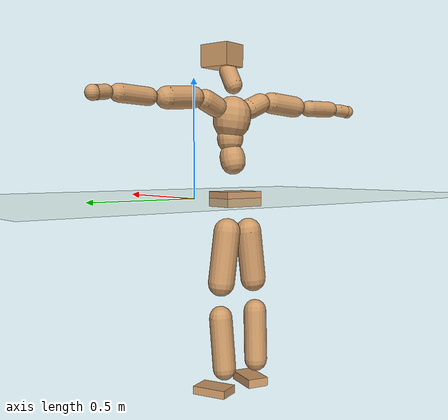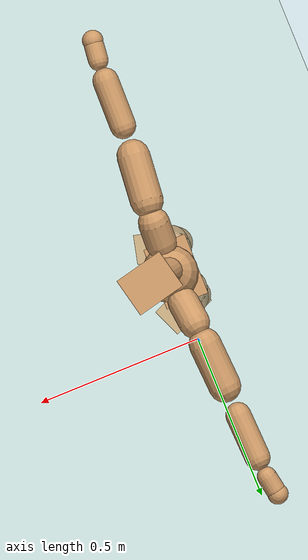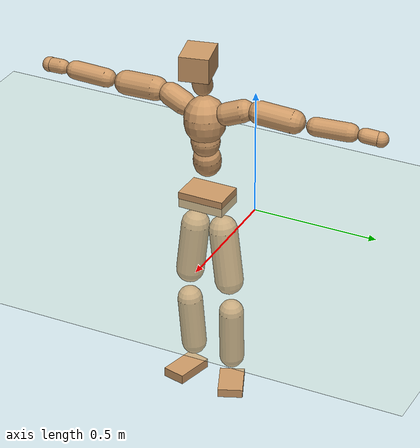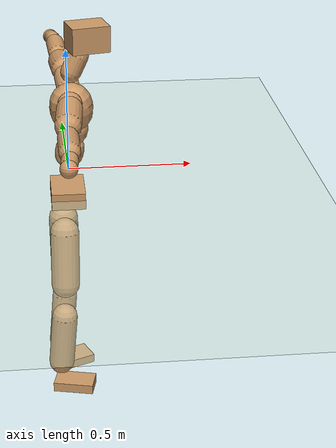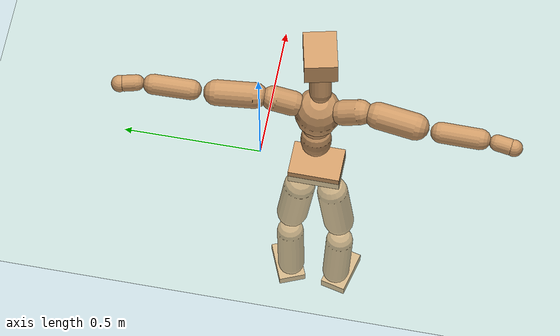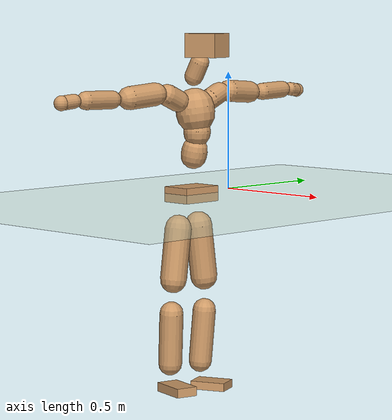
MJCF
<mujoco model="humanoid">
  <compiler coordinate="local" angle="radian"/>
  <default>
    <joint damping="0.0" armature="0.01" stiffness="0.0" limited="true"/>
    <geom conaffinity="1" condim="3" contype="7" margin="0.001" rgba="0.8 0.6 .4 1"/>
  </default>
  <asset>
    <texture type="skybox" builtin="gradient" rgb1=".4 .5 .6" rgb2="0 0 0" width="100" height="100"/>
    <texture builtin="flat" height="1278" mark="cross" markrgb="1 1 1" name="texgeom" random="0.01" rgb1="0.8 0.6 0.4" rgb2="0.8 0.6 0.4" type="cube" width="127"/>
    <texture builtin="checker" height="100" name="texplane" rgb1="0 0 0" rgb2="0.8 0.8 0.8" type="2d" width="100"/>
    <material name="MatPlane" reflectance="0.5" shininess="1" specular="1" texrepeat="60 60" texture="texplane"/>
    <material name="geom" texture="texgeom" texuniform="true"/>
  </asset>
  <worldbody>
    <light cutoff="100" diffuse="1 1 1" dir="-0 0 -1.3" directional="true" exponent="1" pos="0 0 1.3" specular=".1 .1 .1"/>
    <geom conaffinity="1" condim="3" name="floor" pos="0 0 0" rgba="0.8 0.9 0.8 1" size="100 100 .2" type="plane" material="MatPlane"/>
    <body name="Pelvis" pos="-0.0014 -0.209 0.0023">
      <freejoint name="Pelvis"/>
      <geom type="box" contype="1" conaffinity="1" density="500" pos="-0.0129 0.0001 -0.0084" size="0.0651 0.0933 0.0323" quat="1.0000 0.0000 0.0000 -0.0042" name="Pelvis"/>
      <body name="L_Hip" pos="-0.0313 0.0501 -0.0729">
        <joint name="L_Hip_x" type="hinge" pos="0 0 0" axis="1 0 0" stiffness="800" damping="80" armature="0.02" range="-180.0000 180.0000"/>
        <joint name="L_Hip_y" type="hinge" pos="0 0 0" axis="0 1 0" stiffness="800" damping="80" armature="0.02" range="-180.0000 180.0000"/>
        <joint name="L_Hip_z" type="hinge" pos="0 0 0" axis="0 0 1" stiffness="800" damping="80" armature="0.02" range="-180.0000 180.0000"/>
        <geom type="capsule" contype="1" conaffinity="1" density="500" fromto="0.0013 0.0095 -0.0743 0.0053 0.0379 -0.2971" size="0.0573" name="L_Hip"/>
        <body name="L_Knee" pos="0.0067 0.0474 -0.3714">
          <joint name="L_Knee_x" type="hinge" pos="0 0 0" axis="1 0 0" stiffness="800" damping="80" armature="0.02" range="-180.0000 180.0000"/>
          <joint name="L_Knee_y" type="hinge" pos="0 0 0" axis="0 1 0" stiffness="800" damping="80" armature="0.02" range="-180.0000 180.0000"/>
          <joint name="L_Knee_z" type="hinge" pos="0 0 0" axis="0 0 1" stiffness="800" damping="80" armature="0.02" range="-180.0000 180.0000"/>
          <geom type="capsule" contype="1" conaffinity="1" density="500" fromto="-0.0061 -0.0019 -0.0740 -0.0245 -0.0076 -0.2958" size="0.0496" name="L_Knee"/>
          <body name="L_Ankle" pos="-0.0306 -0.0095 -0.3698">
            <joint name="L_Ankle_x" type="hinge" pos="0 0 0" axis="1 0 0" stiffness="800" damping="80" armature="0.02" range="-180.0000 180.0000"/>
            <joint name="L_Ankle_y" type="hinge" pos="0 0 0" axis="0 1 0" stiffness="800" damping="80" armature="0.02" range="-180.0000 180.0000"/>
            <joint name="L_Ankle_z" type="hinge" pos="0 0 0" axis="0 0 1" stiffness="800" damping="80" armature="0.02" range="-180.0000 180.0000"/>
            <geom type="box" contype="1" conaffinity="1" density="500" pos="0.0534 0.0221 -0.0270" size="0.0763 0.0497 0.0175" quat="0.9808 0.0000 0.0000 0.1953" name="L_Ankle"/>
            <body name="L_Toe" pos="0.1068 0.0443 -0.054">
              <joint name="L_Toe_x" type="hinge" pos="0 0 0" axis="1 0 0" stiffness="500" damping="50" armature="0.02" range="-180.0000 180.0000"/>
              <joint name="L_Toe_y" type="hinge" pos="0 0 0" axis="0 1 0" stiffness="500" damping="50" armature="0.02" range="-180.0000 180.0000"/>
              <joint name="L_Toe_z" type="hinge" pos="0 0 0" axis="0 0 1" stiffness="500" damping="50" armature="0.02" range="-180.0000 180.0000"/>
              <geom type="box" contype="1" conaffinity="1" density="500" pos="0.0000 0.0000 0.0286" size="0.001 0.0024 0.001" quat="0.9798 0.0000 0.0000 0.1997" name="L_Toe"/>
            </body>
          </body>
        </body>
      </body>
      <body name="R_Hip" pos="-0.03 -0.0528 -0.0785">
        <joint name="R_Hip_x" type="hinge" pos="0 0 0" axis="1 0 0" stiffness="800" damping="80" armature="0.02" range="-180.0000 180.0000"/>
        <joint name="R_Hip_y" type="hinge" pos="0 0 0" axis="0 1 0" stiffness="800" damping="80" armature="0.02" range="-180.0000 180.0000"/>
        <joint name="R_Hip_z" type="hinge" pos="0 0 0" axis="0 0 1" stiffness="800" damping="80" armature="0.02" range="-180.0000 180.0000"/>
        <geom type="capsule" contype="1" conaffinity="1" density="500" fromto="-0.0009 -0.0087 -0.0722 -0.0036 -0.0347 -0.2886" size="0.056" name="R_Hip"/>
        <body name="R_Knee" pos="-0.0045 -0.0434 -0.3608">
          <joint name="R_Knee_x" type="hinge" pos="0 0 0" axis="1 0 0" stiffness="800" damping="80" armature="0.02" range="-180.0000 180.0000"/>
          <joint name="R_Knee_y" type="hinge" pos="0 0 0" axis="0 1 0" stiffness="800" damping="80" armature="0.02" range="-180.0000 180.0000"/>
          <joint name="R_Knee_z" type="hinge" pos="0 0 0" axis="0 0 1" stiffness="800" damping="80" armature="0.02" range="-180.0000 180.0000"/>
          <geom type="capsule" contype="1" conaffinity="1" density="500" fromto="-0.0057 0.0031 -0.0725 -0.0228 0.0123 -0.2901" size="0.0503" name="R_Knee"/>
          <body name="R_Ankle" pos="-0.0285 0.0154 -0.3627">
            <joint name="R_Ankle_x" type="hinge" pos="0 0 0" axis="1 0 0" stiffness="800" damping="80" armature="0.02" range="-180.0000 180.0000"/>
            <joint name="R_Ankle_y" type="hinge" pos="0 0 0" axis="0 1 0" stiffness="800" damping="80" armature="0.02" range="-180.0000 180.0000"/>
            <joint name="R_Ankle_z" type="hinge" pos="0 0 0" axis="0 0 1" stiffness="800" damping="80" armature="0.02" range="-180.0000 180.0000"/>
            <geom type="box" contype="1" conaffinity="1" density="500" pos="0.0575 -0.0139 -0.0284" size="0.0802 0.0469 0.0192" quat="0.9930 0.0000 0.0000 -0.1185" name="R_Ankle"/>
            <body name="R_Toe" pos="0.1149 -0.0278 -0.0568">
              <joint name="R_Toe_x" type="hinge" pos="0 0 0" axis="1 0 0" stiffness="500" damping="50" armature="0.02" range="-180.0000 180.0000"/>
              <joint name="R_Toe_y" type="hinge" pos="0 0 0" axis="0 1 0" stiffness="500" damping="50" armature="0.02" range="-180.0000 180.0000"/>
              <joint name="R_Toe_z" type="hinge" pos="0 0 0" axis="0 0 1" stiffness="500" damping="50" armature="0.02" range="-180.0000 180.0000"/>
              <geom type="box" contype="1" conaffinity="1" density="500" pos="0.0000 0.0000 0.0313" size="0.0009 0.0023 0.0011" quat="0.9941 0.0000 0.0000 -0.1085" name="R_Toe"/>
            </body>
          </body>
        </body>
      </body>
      <body name="Torso" pos="-0.0162 0.0033 0.1009">
        <joint name="Torso_x" type="hinge" pos="0 0 0" axis="1 0 0" stiffness="1000" damping="100" armature="0.02" range="-180.0000 180.0000"/>
        <joint name="Torso_y" type="hinge" pos="0 0 0" axis="0 1 0" stiffness="1000" damping="100" armature="0.02" range="-180.0000 180.0000"/>
        <joint name="Torso_z" type="hinge" pos="0 0 0" axis="0 0 1" stiffness="1000" damping="100" armature="0.02" range="-180.0000 180.0000"/>
        <geom type="capsule" contype="1" conaffinity="1" density="500" fromto="0.0177 0.0018 0.0763 0.0118 0.0012 0.0509" size="0.0545" name="Torso"/>
        <body name="Spine" pos="0.0296 0.003 0.1272">
          <joint name="Spine_x" type="hinge" pos="0 0 0" axis="1 0 0" stiffness="1000" damping="100" armature="0.02" range="-180.0000 180.0000"/>
          <joint name="Spine_y" type="hinge" pos="0 0 0" axis="0 1 0" stiffness="1000" damping="100" armature="0.02" range="-180.0000 180.0000"/>
          <joint name="Spine_z" type="hinge" pos="0 0 0" axis="0 0 1" stiffness="1000" damping="100" armature="0.02" range="-180.0000 180.0000"/>
          <geom type="capsule" contype="1" conaffinity="1" density="500" fromto="0.0009 -0.0006 0.0308 0.0006 -0.0004 0.0205" size="0.0567" name="Spine"/>
          <body name="Chest" pos="0.0015 -0.001 0.0514">
            <joint name="Chest_x" type="hinge" pos="0 0 0" axis="1 0 0" stiffness="1000" damping="100" armature="0.02" range="-180.0000 180.0000"/>
            <joint name="Chest_y" type="hinge" pos="0 0 0" axis="0 1 0" stiffness="1000" damping="100" armature="0.02" range="-180.0000 180.0000"/>
            <joint name="Chest_z" type="hinge" pos="0 0 0" axis="0 0 1" stiffness="1000" damping="100" armature="0.02" range="-180.0000 180.0000"/>
            <geom type="capsule" contype="1" conaffinity="1" density="500" fromto="-0.0080 -0.0056 0.0755 -0.0053 -0.0037 0.0503" size="0.0817" name="Chest"/>
            <body name="Neck" pos="-0.0154 -0.015 0.1857">
              <joint name="Neck_x" type="hinge" pos="0 0 0" axis="1 0 0" stiffness="500" damping="50" armature="0.02" range="-180.0000 180.0000"/>
              <joint name="Neck_y" type="hinge" pos="0 0 0" axis="0 1 0" stiffness="500" damping="50" armature="0.02" range="-180.0000 180.0000"/>
              <joint name="Neck_z" type="hinge" pos="0 0 0" axis="0 0 1" stiffness="500" damping="50" armature="0.02" range="-180.0000 180.0000"/>
              <geom type="capsule" contype="1" conaffinity="1" density="500" fromto="0.0095 0.0018 0.0197 0.0381 0.0074 0.0790" size="0.0392" name="Neck"/>
              <body name="Head" pos="0.0476 0.0092 0.0987">
                <joint name="Head_x" type="hinge" pos="0 0 0" axis="1 0 0" stiffness="500" damping="50" armature="0.02" range="-180.0000 180.0000"/>
                <joint name="Head_y" type="hinge" pos="0 0 0" axis="0 1 0" stiffness="500" damping="50" armature="0.02" range="-180.0000 180.0000"/>
                <joint name="Head_z" type="hinge" pos="0 0 0" axis="0 0 1" stiffness="500" damping="50" armature="0.02" range="-180.0000 180.0000"/>
                <geom type="box" contype="1" conaffinity="1" density="500" pos="0.0248 0.0056 0.0503" size="0.0719 0.0577 0.0494" quat="0.9938 0.0000 0.0000 0.1112" name="Head"/>
              </body>
            </body>
            <body name="L_Thorax" pos="-0.0088 0.0624 0.096">
              <joint name="L_Thorax_x" type="hinge" pos="0 0 0" axis="1 0 0" stiffness="500" damping="50" armature="0.02" range="-180.0000 180.0000"/>
              <joint name="L_Thorax_y" type="hinge" pos="0 0 0" axis="0 1 0" stiffness="500" damping="50" armature="0.02" range="-180.0000 180.0000"/>
              <joint name="L_Thorax_z" type="hinge" pos="0 0 0" axis="0 0 1" stiffness="500" damping="50" armature="0.02" range="-180.0000 180.0000"/>
              <geom type="capsule" contype="1" conaffinity="1" density="500" fromto="-0.0024 0.0220 0.0088 -0.0094 0.0882 0.0350" size="0.0445" name="L_Thorax"/>
              <body name="L_Shoulder" pos="-0.0118 0.1102 0.0438">
                <joint name="L_Shoulder_x" type="hinge" pos="0 0 0" axis="1 0 0" stiffness="500" damping="50" armature="0.02" range="-720.0000 720.0000"/>
                <joint name="L_Shoulder_y" type="hinge" pos="0 0 0" axis="0 1 0" stiffness="500" damping="50" armature="0.02" range="-720.0000 720.0000"/>
                <joint name="L_Shoulder_z" type="hinge" pos="0 0 0" axis="0 0 1" stiffness="500" damping="50" armature="0.02" range="-720.0000 720.0000"/>
                <geom type="capsule" contype="1" conaffinity="1" density="500" fromto="-0.0025 0.0446 -0.0032 -0.0099 0.1782 -0.0128" size="0.0463" name="L_Shoulder"/>
                <body name="L_Elbow" pos="-0.0124 0.2228 -0.016">
                  <joint name="L_Elbow_x" type="hinge" pos="0 0 0" axis="1 0 0" stiffness="500" damping="50" armature="0.02" range="-720.0000 720.0000"/>
                  <joint name="L_Elbow_y" type="hinge" pos="0 0 0" axis="0 1 0" stiffness="500" damping="50" armature="0.02" range="-720.0000 720.0000"/>
                  <joint name="L_Elbow_z" type="hinge" pos="0 0 0" axis="0 0 1" stiffness="500" damping="50" armature="0.02" range="-720.0000 720.0000"/>
                  <geom type="capsule" contype="1" conaffinity="1" density="500" fromto="-0.0017 0.0446 0.0016 -0.0069 0.1783 0.0063" size="0.0364" name="L_Elbow"/>
                  <body name="L_Wrist" pos="-0.0086 0.2229 0.0079">
                    <joint name="L_Wrist_x" type="hinge" pos="0 0 0" axis="1 0 0" stiffness="300" damping="30" armature="0.02" range="-180.0000 180.0000"/>
                    <joint name="L_Wrist_y" type="hinge" pos="0 0 0" axis="0 1 0" stiffness="300" damping="30" armature="0.02" range="-180.0000 180.0000"/>
                    <joint name="L_Wrist_z" type="hinge" pos="0 0 0" axis="0 0 1" stiffness="300" damping="30" armature="0.02" range="-180.0000 180.0000"/>
                    <geom type="capsule" contype="1" conaffinity="1" density="500" fromto="-0.0026 0.0146 -0.0019 -0.0104 0.0583 -0.0076" size="0.0286" name="L_Wrist"/>
                    <body name="L_Hand" pos="-0.013 0.0728 -0.0094">
                      <joint name="L_Hand_x" type="hinge" pos="0 0 0" axis="1 0 0" stiffness="300" damping="30" armature="0.02" range="-180.0000 180.0000"/>
                      <joint name="L_Hand_y" type="hinge" pos="0 0 0" axis="0 1 0" stiffness="300" damping="30" armature="0.02" range="-180.0000 180.0000"/>
                      <joint name="L_Hand_z" type="hinge" pos="0 0 0" axis="0 0 1" stiffness="300" damping="30" armature="0.02" range="-180.0000 180.0000"/>
                      <geom type="sphere" contype="1" conaffinity="1" density="500" size="0.0300" pos="0.0000 0.0000 0.0000" name="L_Hand"/>
                    </body>
                  </body>
                </body>
              </body>
            </body>
            <body name="R_Thorax" pos="-0.0157 -0.0753 0.0959">
              <joint name="R_Thorax_x" type="hinge" pos="0 0 0" axis="1 0 0" stiffness="500" damping="50" armature="0.02" range="-180.0000 180.0000"/>
              <joint name="R_Thorax_y" type="hinge" pos="0 0 0" axis="0 1 0" stiffness="500" damping="50" armature="0.02" range="-180.0000 180.0000"/>
              <joint name="R_Thorax_z" type="hinge" pos="0 0 0" axis="0 0 1" stiffness="500" damping="50" armature="0.02" range="-180.0000 180.0000"/>
              <geom type="capsule" contype="1" conaffinity="1" density="500" fromto="-0.0008 -0.0203 0.0092 -0.0031 -0.0812 0.0367" size="0.0451" name="R_Thorax"/>
              <body name="R_Shoulder" pos="-0.0038 -0.1015 0.0459">
                <joint name="R_Shoulder_x" type="hinge" pos="0 0 0" axis="1 0 0" stiffness="500" damping="50" armature="0.02" range="-720.0000 720.0000"/>
                <joint name="R_Shoulder_y" type="hinge" pos="0 0 0" axis="0 1 0" stiffness="500" damping="50" armature="0.02" range="-720.0000 720.0000"/>
                <joint name="R_Shoulder_z" type="hinge" pos="0 0 0" axis="0 0 1" stiffness="500" damping="50" armature="0.02" range="-720.0000 720.0000"/>
                <geom type="capsule" contype="1" conaffinity="1" density="500" fromto="-0.0043 -0.0444 -0.0038 -0.0173 -0.1776 -0.0151" size="0.0478" name="R_Shoulder"/>
                <body name="R_Elbow" pos="-0.0216 -0.222 -0.0189">
                  <joint name="R_Elbow_x" type="hinge" pos="0 0 0" axis="1 0 0" stiffness="500" damping="50" armature="0.02" range="-720.0000 720.0000"/>
                  <joint name="R_Elbow_y" type="hinge" pos="0 0 0" axis="0 1 0" stiffness="500" damping="50" armature="0.02" range="-720.0000 720.0000"/>
                  <joint name="R_Elbow_z" type="hinge" pos="0 0 0" axis="0 0 1" stiffness="500" damping="50" armature="0.02" range="-720.0000 720.0000"/>
                  <geom type="capsule" contype="1" conaffinity="1" density="500" fromto="-0.0008 -0.0459 0.0008 -0.0034 -0.1837 0.0030" size="0.0372" name="R_Elbow"/>
                  <body name="R_Wrist" pos="-0.0042 -0.2296 0.0038">
                    <joint name="R_Wrist_x" type="hinge" pos="0 0 0" axis="1 0 0" stiffness="300" damping="30" armature="0.02" range="-180.0000 180.0000"/>
                    <joint name="R_Wrist_y" type="hinge" pos="0 0 0" axis="0 1 0" stiffness="300" damping="30" armature="0.02" range="-180.0000 180.0000"/>
                    <joint name="R_Wrist_z" type="hinge" pos="0 0 0" axis="0 0 1" stiffness="300" damping="30" armature="0.02" range="-180.0000 180.0000"/>
                    <geom type="capsule" contype="1" conaffinity="1" density="500" fromto="-0.0017 -0.0148 -0.0014 -0.0069 -0.0593 -0.0057" size="0.0289" name="R_Wrist"/>
                    <body name="R_Hand" pos="-0.0086 -0.0742 -0.0071">
                      <joint name="R_Hand_x" type="hinge" pos="0 0 0" axis="1 0 0" stiffness="300" damping="30" armature="0.02" range="-180.0000 180.0000"/>
                      <joint name="R_Hand_y" type="hinge" pos="0 0 0" axis="0 1 0" stiffness="300" damping="30" armature="0.02" range="-180.0000 180.0000"/>
                      <joint name="R_Hand_z" type="hinge" pos="0 0 0" axis="0 0 1" stiffness="300" damping="30" armature="0.02" range="-180.0000 180.0000"/>
                      <geom type="sphere" contype="1" conaffinity="1" density="500" size="0.0302" pos="0.0000 0.0000 0.0000" name="R_Hand"/>
                    </body>
                  </body>
                </body>
              </body>
            </body>
          </body>
        </body>
      </body>
    </body>
  </worldbody>
  <actuator>
    <motor name="L_Hip_x" joint="L_Hip_x" gear="500"/>
    <motor name="L_Hip_y" joint="L_Hip_y" gear="500"/>
    <motor name="L_Hip_z" joint="L_Hip_z" gear="500"/>
    <motor name="L_Knee_x" joint="L_Knee_x" gear="500"/>
    <motor name="L_Knee_y" joint="L_Knee_y" gear="500"/>
    <motor name="L_Knee_z" joint="L_Knee_z" gear="500"/>
    <motor name="L_Ankle_x" joint="L_Ankle_x" gear="500"/>
    <motor name="L_Ankle_y" joint="L_Ankle_y" gear="500"/>
    <motor name="L_Ankle_z" joint="L_Ankle_z" gear="500"/>
    <motor name="L_Toe_x" joint="L_Toe_x" gear="500"/>
    <motor name="L_Toe_y" joint="L_Toe_y" gear="500"/>
    <motor name="L_Toe_z" joint="L_Toe_z" gear="500"/>
    <motor name="R_Hip_x" joint="R_Hip_x" gear="500"/>
    <motor name="R_Hip_y" joint="R_Hip_y" gear="500"/>
    <motor name="R_Hip_z" joint="R_Hip_z" gear="500"/>
    <motor name="R_Knee_x" joint="R_Knee_x" gear="500"/>
    <motor name="R_Knee_y" joint="R_Knee_y" gear="500"/>
    <motor name="R_Knee_z" joint="R_Knee_z" gear="500"/>
    <motor name="R_Ankle_x" joint="R_Ankle_x" gear="500"/>
    <motor name="R_Ankle_y" joint="R_Ankle_y" gear="500"/>
    <motor name="R_Ankle_z" joint="R_Ankle_z" gear="500"/>
    <motor name="R_Toe_x" joint="R_Toe_x" gear="500"/>
    <motor name="R_Toe_y" joint="R_Toe_y" gear="500"/>
    <motor name="R_Toe_z" joint="R_Toe_z" gear="500"/>
    <motor name="Torso_x" joint="Torso_x" gear="500"/>
    <motor name="Torso_y" joint="Torso_y" gear="500"/>
    <motor name="Torso_z" joint="Torso_z" gear="500"/>
    <motor name="Spine_x" joint="Spine_x" gear="500"/>
    <motor name="Spine_y" joint="Spine_y" gear="500"/>
    <motor name="Spine_z" joint="Spine_z" gear="500"/>
    <motor name="Chest_x" joint="Chest_x" gear="500"/>
    <motor name="Chest_y" joint="Chest_y" gear="500"/>
    <motor name="Chest_z" joint="Chest_z" gear="500"/>
    <motor name="Neck_x" joint="Neck_x" gear="500"/>
    <motor name="Neck_y" joint="Neck_y" gear="500"/>
    <motor name="Neck_z" joint="Neck_z" gear="500"/>
    <motor name="Head_x" joint="Head_x" gear="500"/>
    <motor name="Head_y" joint="Head_y" gear="500"/>
    <motor name="Head_z" joint="Head_z" gear="500"/>
    <motor name="L_Thorax_x" joint="L_Thorax_x" gear="500"/>
    <motor name="L_Thorax_y" joint="L_Thorax_y" gear="500"/>
    <motor name="L_Thorax_z" joint="L_Thorax_z" gear="500"/>
    <motor name="L_Shoulder_x" joint="L_Shoulder_x" gear="500"/>
    <motor name="L_Shoulder_y" joint="L_Shoulder_y" gear="500"/>
    <motor name="L_Shoulder_z" joint="L_Shoulder_z" gear="500"/>
    <motor name="L_Elbow_x" joint="L_Elbow_x" gear="500"/>
    <motor name="L_Elbow_y" joint="L_Elbow_y" gear="500"/>
    <motor name="L_Elbow_z" joint="L_Elbow_z" gear="500"/>
    <motor name="L_Wrist_x" joint="L_Wrist_x" gear="500"/>
    <motor name="L_Wrist_y" joint="L_Wrist_y" gear="500"/>
    <motor name="L_Wrist_z" joint="L_Wrist_z" gear="500"/>
    <motor name="L_Hand_x" joint="L_Hand_x" gear="500"/>
    <motor name="L_Hand_y" joint="L_Hand_y" gear="500"/>
    <motor name="L_Hand_z" joint="L_Hand_z" gear="500"/>
    <motor name="R_Thorax_x" joint="R_Thorax_x" gear="500"/>
    <motor name="R_Thorax_y" joint="R_Thorax_y" gear="500"/>
    <motor name="R_Thorax_z" joint="R_Thorax_z" gear="500"/>
    <motor name="R_Shoulder_x" joint="R_Shoulder_x" gear="500"/>
    <motor name="R_Shoulder_y" joint="R_Shoulder_y" gear="500"/>
    <motor name="R_Shoulder_z" joint="R_Shoulder_z" gear="500"/>
    <motor name="R_Elbow_x" joint="R_Elbow_x" gear="500"/>
    <motor name="R_Elbow_y" joint="R_Elbow_y" gear="500"/>
    <motor name="R_Elbow_z" joint="R_Elbow_z" gear="500"/>
    <motor name="R_Wrist_x" joint="R_Wrist_x" gear="500"/>
    <motor name="R_Wrist_y" joint="R_Wrist_y" gear="500"/>
    <motor name="R_Wrist_z" joint="R_Wrist_z" gear="500"/>
    <motor name="R_Hand_x" joint="R_Hand_x" gear="500"/>
    <motor name="R_Hand_y" joint="R_Hand_y" gear="500"/>
    <motor name="R_Hand_z" joint="R_Hand_z" gear="500"/>
  </actuator>
  <contact>
    <exclude body1="Torso" body2="Chest"/>
    <exclude body1="Head" body2="Chest"/>
    <exclude body1="R_Knee" body2="R_Toe"/>
    <exclude body1="R_Knee" body2="L_Ankle"/>
    <exclude body1="R_Knee" body2="L_Toe"/>
    <exclude body1="L_Knee" body2="L_Toe"/>
    <exclude body1="L_Knee" body2="R_Ankle"/>
    <exclude body1="L_Knee" body2="R_Toe"/>
    <exclude body1="L_Shoulder" body2="Chest"/>
    <exclude body1="R_Shoulder" body2="Chest"/>
  </contact>
  <sensor/>
  <size njmax="700" nconmax="700"/>
</mujoco>
